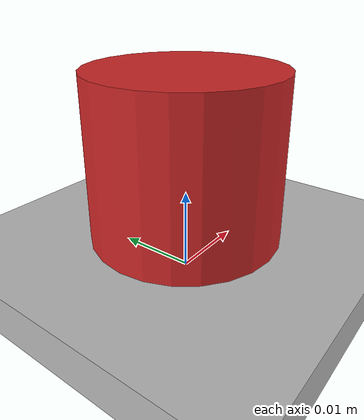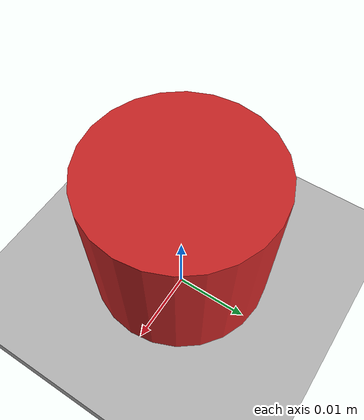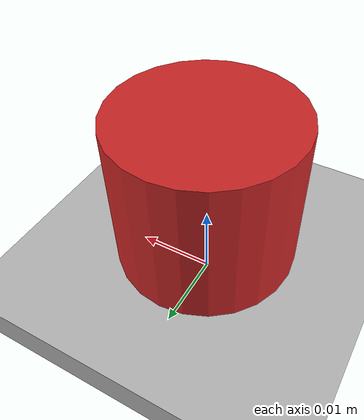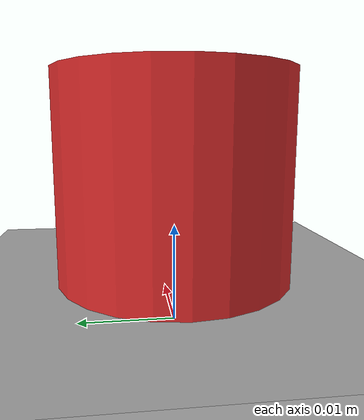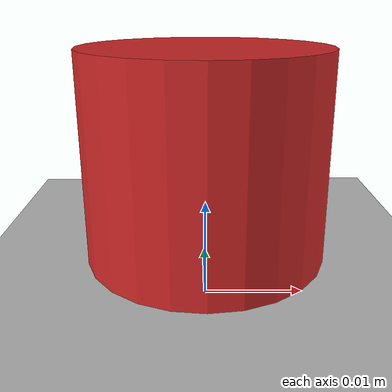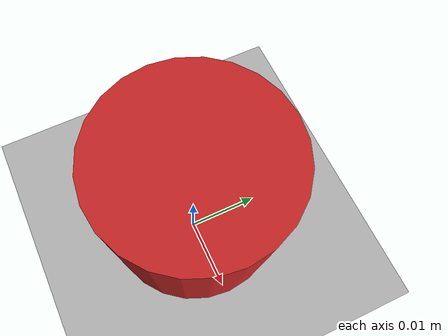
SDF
<?xml version="1.0" ?>
<sdf version="1.6">
  <model name="Checkers">
    <static>false</static>
    <include>
        <name>board</name>
        <uri>model://checkers_board</uri>
        <pose frame=''>0 0 0 0 0 0</pose>
    </include>
    <!--red-->
    <include>
        <name>red_checker_1</name>
        <uri>model://red_checker</uri>
    </include>
    <include>
        <name>red_checker_2</name>
        <uri>model://red_checker</uri>
    </include>
    <include>
        <name>red_checker_3</name>
        <uri>model://red_checker</uri>
    </include>
    <include>
        <name>red_checker_4</name>
        <uri>model://red_checker</uri>
    </include>
    <include>
        <name>red_checker_5</name>
        <uri>model://red_checker</uri>
    </include>
    <include>
        <name>red_checker_6</name>
        <uri>model://red_checker</uri>
    </include>
    <include>
        <name>red_checker_7</name>
        <uri>model://red_checker</uri>
    </include>
    <include>
        <name>red_checker_8</name>
        <uri>model://red_checker</uri>
    </include>
    <include>
        <name>red_checker_9</name>
        <uri>model://red_checker</uri>
    </include>
    <include>
        <name>red_checker_10</name>
        <uri>model://red_checker</uri>
    </include>
    <include>
        <name>red_checker_11</name>
        <uri>model://red_checker</uri>
    </include>
    <include>
        <name>red_checker_12</name>
        <uri>model://red_checker</uri>
    </include>
    <!--blue-->
        <include>
        <name>blue_checker_1</name>
        <uri>model://blue_checker</uri>
    </include>
    <include>
        <name>blue_checker_2</name>
        <uri>model://blue_checker</uri>
    </include>
    <include>
        <name>blue_checker_3</name>
        <uri>model://blue_checker</uri>
    </include>
    <include>
        <name>blue_checker_4</name>
        <uri>model://blue_checker</uri>
    </include>
    <include>
        <name>blue_checker_5</name>
        <uri>model://blue_checker</uri>
    </include>
    <include>
        <name>blue_checker_6</name>
        <uri>model://blue_checker</uri>
    </include>
    <include>
        <name>blue_checker_7</name>
        <uri>model://blue_checker</uri>
    </include>
    <include>
        <name>blue_checker_8</name>
        <uri>model://blue_checker</uri>
    </include>
    <include>
        <name>blue_checker_9</name>
        <uri>model://blue_checker</uri>
    </include>
    <include>
        <name>blue_checker_10</name>
        <uri>model://blue_checker</uri>
    </include>
    <include>
        <name>blue_checker_11</name>
        <uri>model://blue_checker</uri>
    </include>
    <include>
        <name>blue_checker_12</name>
        <uri>model://blue_checker</uri>
    </include>
  </model>
</sdf>

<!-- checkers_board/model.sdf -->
<sdf version="1.6">
  <model name="Checkers_Board">
    <static>true</static>
    <link name="checkers_board">
      <pose>0 0 0.0025 0 0 0</pose>
      <collision name="collision">
        <geometry>
          <box>
            <size>.2921 0.2921 .005</size>
          </box>
        </geometry>
        <surface>
            <friction>
            <ode>
                <mu>0.08</mu>
                <mu2>0.08</mu2>
            </ode>
            </friction>
        </surface>
      </collision>
      <visual name="visual">
        <cast_shadows>false</cast_shadows>
        <geometry>
          <box>
            <size>.2921 0.2921 .005</size>
          </box>
        </geometry>
        <material>
            <script>
                <uri>model://checkers_board/materials/scripts</uri>
                <uri>model://checkers_board/materials/textures</uri>
                <name>Checkers/Board</name>
            </script>
        </material>
      </visual>
     <inertial>
        <mass>0.068</mass>
        <inertia>
          <ixx>0.00048</ixx>
          <ixy>0.0</ixy>
          <ixz>0.0</ixz>
          <iyy>0.00048</iyy>
          <iyz>0.0</iyz>
          <izz>0.001</izz>
        </inertia>
      </inertial>
    </link>
  </model>

</sdf>

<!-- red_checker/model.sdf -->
<sdf version="1.6">
  <model name="Red_Checker">
    <static>false</static>
    <link name="red_checker">
      <pose>0 0 0.0125 0 0 0</pose>
      <collision name="collision">
        <geometry>
            <cylinder>
              <radius>.0116</radius>
              <length>.025</length>
            </cylinder>
        </geometry>
              <surface>
        <friction>
          <ode>
            <mu>0.01</mu>
            <mu2>0.01</mu2>
          </ode>
        </friction>
      </surface>
      </collision>
      <visual name="visual">
        <cast_shadows>false</cast_shadows>
        <geometry>
            <cylinder>
              <radius>.0116</radius>
              <length>.025</length>
            </cylinder>
        </geometry>
        <material>
        <script>
            <uri>file://media/materials/scripts/gazebo.material</uri>
            <name>Gazebo/Red</name>
        </script>
        </material>
      </visual>
     <inertial>
        <mass>0.021</mass>
        <inertia>
          <ixx>0.000002</ixx>
          <ixy>0.0</ixy>
          <ixz>0.0</ixz>
          <iyy>0.000002</iyy>
          <iyz>0.0</iyz>
          <izz>0.000002</izz>
        </inertia>
      </inertial>
    </link>
  </model>

</sdf>

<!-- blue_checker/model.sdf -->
<sdf version="1.6">
  <model name="Blue_Checker">
    <static>false</static>
    <link name="blue_checker">
      <pose>0 0 0.0125 0 0 0</pose>
      <collision name="collision">
        <geometry>
            <cylinder>
              <radius>.0116</radius>
              <length>.025</length>
            </cylinder>
        </geometry>
      </collision>
      <visual name="visual">
        <cast_shadows>false</cast_shadows>
        <geometry>
            <cylinder>
              <radius>.0116</radius>
              <length>.025</length>
            </cylinder>
        </geometry>
        <material>
        <script>
            <uri>file://media/materials/scripts/gazebo.material</uri>
            <name>Gazebo/Blue</name>
        </script>
        </material>
      </visual>
     <inertial>
        <mass>0.021</mass>
        <inertia>
          <ixx>0.000002</ixx>
          <ixy>0.0</ixy>
          <ixz>0.0</ixz>
          <iyy>0.000002</iyy>
          <iyz>0.0</iyz>
          <izz>0.000002</izz>
        </inertia>
      </inertial>
    </link>
  </model>

</sdf>
